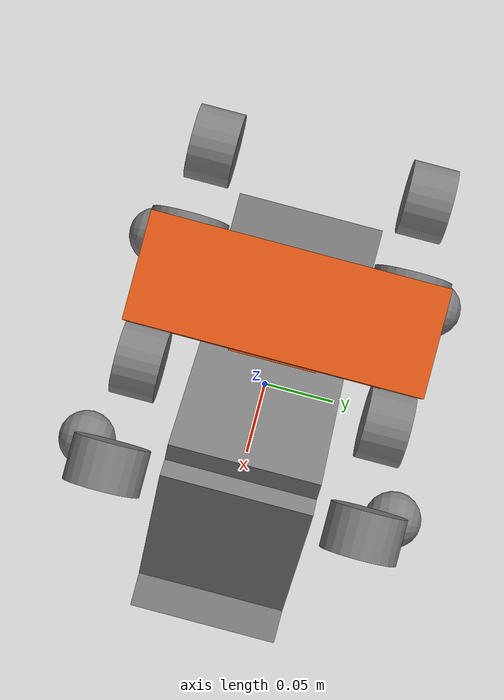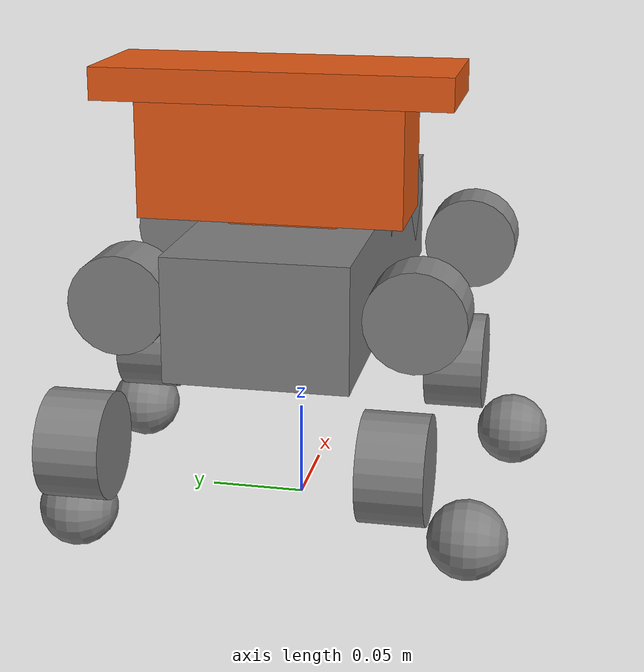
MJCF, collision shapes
<mujoco model="pupper_v3">
    <asset>
        <texture type="skybox" builtin="gradient" rgb1=".3 .5 .7" rgb2="0 0 0" width="512"
            height="512" />
        <texture name="grid" type="2d" builtin="checker" width="512" height="512" rgb1=".2 .4 .6"
            rgb2=".4 .6 .8" />
        <material name="grid" texture="grid" texrepeat="1 1" texuniform="true" reflectance="0" />

<!-- HEATING_MODULE_BEGIN -->
<mesh name="heating_module_mesh" file="Heating_module.stl" scale="0.001 0.001 0.001" />
<!-- HEATING_MODULE_END -->
    </asset>
    <sensor>
        <framequat name="body_quat" objtype="site" objname="body_imu_site" />
        <gyro name="body_gyro" site="body_imu_site" />
        <accelerometer name="body_acc" site="body_imu_site" />

        <framequat objtype="site" objname="body_imu_site" name="orientation" />
        <framepos objtype="site" objname="body_imu_site" name="global_position" />
        <framelinvel objtype="site" objname="body_imu_site" name="global_linvel" />
        <frameangvel objtype="site" objname="body_imu_site" name="global_angvel" />
    </sensor>
    <actuator>
        <general joint="leg_front_r_1" name="leg_front_r_1" />
        <general joint="leg_front_r_2" name="leg_front_r_2" />
        <general joint="leg_front_r_3" name="leg_front_r_3" />

        <general joint="leg_front_l_1" name="leg_front_l_1" />
        <general joint="leg_front_l_2" name="leg_front_l_2" />
        <general joint="leg_front_l_3" name="leg_front_l_3" />

        <general joint="leg_back_r_1" name="leg_back_r_1" />
        <general joint="leg_back_r_2" name="leg_back_r_2" />
        <general joint="leg_back_r_3" name="leg_back_r_3" />

        <general joint="leg_back_l_1" name="leg_back_l_1" />
        <general joint="leg_back_l_2" name="leg_back_l_2" />
        <general joint="leg_back_l_3" name="leg_back_l_3" />
    </actuator>
    <default>
        <!-- position control actuators -->
        <general forcerange="-3 3" forcelimited="true" biastype="affine" gainprm="5.0 0 0"
            biasprm="0 -5.0 -0.1" />

        <!-- visual geom will go to group 4 -->
        <geom condim="6" contype="0" conaffinity="0" group="4" />

        <!-- collision geom in group 3 -->

        <!-- removed solimp which caused nans on flat ground -->
        <default class="collision">
            <geom group="3" contype="1" conaffinity="1"
                friction="0.8 0.02 0.01" />
        </default>

        <default class="visual">
            <geom group="4" contype="0" conaffinity="0" />
        </default>

        <joint armature="0.0016" type="hinge" damping="0.01" frictionloss="0.125" limited="true" />
    </default>
    <option cone="elliptic" impratio="100" />
    <compiler angle="radian" meshdir="../meshes/stl/" autolimits="true" />
    <asset>
        <mesh name="BodyV4v70_001" file="BodyV4v70_001.stl" />
        <mesh name="LegAssemblyForFlangedv26_001" file="LegAssemblyForFlangedv26_001.stl" />
        <mesh name="LegAssemblyForFlangedv26_002" file="LegAssemblyForFlangedv26_002.stl" />
        <mesh name="LegAssemblyForFlangedv26_003" file="LegAssemblyForFlangedv26_003.stl" />
        <mesh name="LegAssemblyForFlangedv26_010" file="LegAssemblyForFlangedv26_010.stl"
            scale="1 -1 1" />
        <mesh name="LegAssemblyForFlangedv26_011" file="LegAssemblyForFlangedv26_011.stl"
            scale="1 1 -1" />
        <mesh name="LegAssemblyForFlangedv26_012" file="LegAssemblyForFlangedv26_012.stl"
            scale="1 1 -1" />
        <mesh name="LegAssemblyForFlangedv26_005" file="LegAssemblyForFlangedv26_005.stl" />
        <mesh name="LegAssemblyForFlangedv26_006" file="LegAssemblyForFlangedv26_006.stl" />
        <mesh name="LegAssemblyForFlangedv26_007" file="LegAssemblyForFlangedv26_007.stl" />
        <mesh name="LegAssemblyForFlangedv26_013" file="LegAssemblyForFlangedv26_013.stl"
            scale="1 -1 1" />
        <mesh name="LegAssemblyForFlangedv26_014" file="LegAssemblyForFlangedv26_014.stl"
            scale="1 1 -1" />
        <mesh name="LegAssemblyForFlangedv26_015" file="LegAssemblyForFlangedv26_015.stl"
            scale="1 1 -1" />
    </asset>
    <worldbody>
        <body name="base_link" pos="0 0 0.13" gravcomp="0">
<!-- HEATING_MODULE_BEGIN -->
<body name="heating_module" pos="-0.036349545 3.1565e-05 0.032506671263" quat="0.5 -0.5 -0.5 0.5">
  <inertial mass="0.60191707499" pos="0.003048 -0.043688 0.0062992" fullinertia="0.00042315693885862 0.0011088116468432 0.0012522050770235 4.6822344548672e-06 2.3411172274336e-06 2.8386046382632e-05" />
  <geom name="heating_module_visual" type="mesh" mesh="heating_module_mesh" group="1" density="0" contype="0" conaffinity="0" rgba="0.96 0.49 0.08 1" />
  <geom name="heating_module_mount_plate_collision" type="box" pos="-3.1566499999997e-05 -0.0729689255 0.009196205" size="0.0870712015 0.0079756015 0.03175" density="0" group="3" contype="1" conaffinity="1" rgba="0.9 0.35 0.08 0.25" friction="0.8 0.02 0.01" />
  <geom name="heating_module_electronics_collision" type="box" pos="0.0022393245 -0.035668326 0.0050547045" size="0.0655292535 0.029324998 0.0267500005" density="0" group="3" contype="1" conaffinity="1" rgba="0.9 0.35 0.08 0.25" friction="0.8 0.02 0.01" />
  <geom name="heating_module_end_bracket_collision" type="box" pos="-3.15645e-05 -0.0031683285 -0.006349545" size="0.0275000005 0.0031750005 0.01620425" density="0" group="3" contype="1" conaffinity="1" rgba="0.9 0.35 0.08 0.25" friction="0.8 0.02 0.01" />
</body>
<!-- HEATING_MODULE_END -->

            <inertial pos="0.025 0 0.015" quat="0 0.677807 0 0.73524" mass="1.506"
                diaginertia="0.00854071 0.0085 0.00235929" />
            <freejoint name="world_to_body" />

            <!-- simple box -->

            <!-- more accurate collision geometry -->
            <geom size="0.04507 0.031 0.129715" pos="0.02146 0 0"
                quat="0.499998 -0.5 -0.500002 0.5" type="box" class="collision" />
            <geom size="0.02 0.04507 0.06" pos="0.02 0 0.04"
                quat="0 0.38 0 0.924" type="box" class="collision" />
            <geom size="0.02 0.04507 0.06" pos="0.094 0 0.04"
                quat="0 -0.38 0 0.924" type="box" class="collision" />

            <geom quat="0.499998 -0.5 -0.500002 0.5" type="mesh" class="visual" density="0"
                mesh="BodyV4v70_001" />
            <body name="leg_front_r_1" pos="0.075 -0.0835 0" quat="0.707105 0.707108 0 0"
                gravcomp="0">
                <inertial pos="0 0 0" mass="0.18" diaginertia="7.4e-05 5.8e-05 4.8e-05" />
                <joint name="leg_front_r_1" pos="0 0 0" axis="0 0 1" range="-1.22 2.51" />
                <geom pos="0 0 0" quat="0 0.707 0 0.707" type="cylinder" size="0.025 0.015"
                    class="collision" />
                <geom pos="0 0 -0.028" quat="1.32679e-06 0 0 1" type="mesh" class="visual"
                    density="0" mesh="LegAssemblyForFlangedv26_001" />
                <body name="leg_front_r_2" pos="0 0 0"
                    quat="0.707107 2.24089e-06 -0.707107 4.83018e-06" gravcomp="0">
                    <inertial pos="0 -0.0334 0.05419" quat="0.903877 0.427791 0 0" mass="0.186"
                        diaginertia="0.000113 9.74951e-05 4.65049e-05" />
                    <joint name="leg_front_r_2" pos="0 0 0" axis="0 0 1" range="-0.42 3.14" />
                    <geom size="0.025 0.015" pos="0 -0.0494 0.0685" quat="0.707105 0 0.707108 0"
                        type="cylinder" class="collision" />
                    <geom pos="-0.028 0 0" quat="-2.93388e-06 0.707108 2.26082e-06 0.707106"
                        type="mesh" class="visual" density="0"
                        mesh="LegAssemblyForFlangedv26_002" />
                    <body name="leg_front_r_3" pos="0 -0.0494 0.0685" quat="0.707105 0 0.707108 0"
                        gravcomp="0">
                        <inertial pos="0.03866 -0.03585 0.02733"
                            quat="0.270598 0.653281 -0.270598 0.653281" mass="0.05"
                            diaginertia="7.7e-05 7.55e-05 5.5e-06" />
                        <joint name="leg_front_r_3" pos="0 0 0" axis="0 0 1" range="-2.79 0.71" />
                        <geom size="0.01995" pos="0.06231 -0.06216 0.027" quat="1.32679e-06 0 0 1"
                            type="sphere" class="collision" />
                        <geom pos="0.0685 0.0494 -0.019" quat="1.32679e-06 0 0 1" type="mesh"
                            class="visual" density="0"
                            mesh="LegAssemblyForFlangedv26_003" />
                        <site name="leg_front_r_3_foot_site" pos="0.06231 -0.06216 0.027" />
                    </body>
                </body>
            </body>
            <body name="leg_front_l_1" pos="0.075 0.0835 0" quat="0.707105 -0.707108 0 0"
                gravcomp="0">
                <inertial pos="0 0 0" mass="0.18" diaginertia="7.4e-05 5.8e-05 4.8e-05" />
                <joint name="leg_front_l_1" pos="0 0 0" axis="0 0 1" range="-2.51 1.22" />
                <geom pos="0 0 -0.028" quat="1.32679e-06 0 0 1" type="mesh" class="visual"
                    density="0" mesh="LegAssemblyForFlangedv26_010" />
                <geom pos="0 0 0" quat="0 0.707 0 0.707" type="cylinder" size="0.025 0.015"
                    class="collision" />
                <body name="leg_front_l_2" pos="0 0 0"
                    quat="-3.89602e-06 0.707107 -1.29867e-06 -0.707107" gravcomp="0">
                    <inertial pos="0 -0.0334 0.05419" quat="0.903877 0.427791 0 0" mass="0.186"
                        diaginertia="0.000113 9.74951e-05 4.65049e-05" />
                    <joint name="leg_front_l_2" pos="0 0 0" axis="0 0 1" range="-3.14 0.42" />
                    <geom size="0.025 0.015" pos="0 -0.0494 0.0685" quat="0.707105 0 0.707108 0"
                        type="cylinder" class="collision" />
                    <geom pos="0.028 0 0" quat="-2.93388e-06 0.707108 2.26082e-06 0.707106"
                        type="mesh" class="visual" density="0"
                        mesh="LegAssemblyForFlangedv26_011" />
                    <body name="leg_front_l_3" pos="0 -0.0494 0.0685"
                        quat="9.38184e-07 -0.707108 9.38187e-07 0.707105" gravcomp="0">
                        <inertial pos="0.03866 0.03585 0.02733"
                            quat="0.653281 0.270598 -0.653281 0.270598" mass="0.05"
                            diaginertia="7.7e-05 7.55e-05 5.5e-06" />
                        <joint name="leg_front_l_3" pos="0 0 0" axis="0 0 1" range="-0.71 2.79" />
                        <geom size="0.01995" pos="0.06231 0.06216 0.027" quat="1.32679e-06 0 0 1"
                            type="sphere" class="collision" />
                        <geom pos="0.0685 -0.0494 -0.019"
                            quat="1.76029e-12 1.32679e-06 1 1.32679e-06" type="mesh" class="visual"
                            density="0"
                            mesh="LegAssemblyForFlangedv26_012" />
                        <site name="leg_front_l_3_foot_site" pos="0.06231 0.06216 0.027" />
                    </body>
                </body>
            </body>
            <body name="leg_back_r_1" pos="-0.075 -0.0725 0" quat="0.707105 0.707108 0 0"
                gravcomp="0">
                <inertial pos="0 0 0" mass="0.18" diaginertia="7.4e-05 5.8e-05 4.8e-05" />
                <joint name="leg_back_r_1" pos="0 0 0" axis="0 0 1" range="-1.22 2.51" />
                <geom pos="0 0 0" quat="0 0.707 0 0.707" type="cylinder" size="0.025 0.015"
                    class="collision" />
                <geom pos="0 0 -0.028" quat="1.32679e-06 0 0 1" type="mesh" class="visual"
                    density="0" mesh="LegAssemblyForFlangedv26_005" />
                <body name="leg_back_r_2" pos="0 0 0"
                    quat="0.707107 2.24089e-06 -0.707107 4.83018e-06" gravcomp="0">
                    <inertial pos="0 -0.0334 0.05419" quat="0.903877 0.427791 0 0" mass="0.186"
                        diaginertia="0.000113 9.74951e-05 4.65049e-05" />
                    <joint name="leg_back_r_2" pos="0 0 0" axis="0 0 1" range="-0.42 3.14" />
                    <geom size="0.025 0.015" pos="0 -0.0494 0.0685" quat="0.707105 0 0.707108 0"
                        type="cylinder" class="collision" />
                    <geom pos="-0.028 0 0" quat="-2.93388e-06 0.707108 2.26082e-06 0.707106"
                        type="mesh" class="visual" density="0"
                        mesh="LegAssemblyForFlangedv26_006" />
                    <body name="leg_back_r_3" pos="0 -0.0494 0.0685" quat="0.707105 0 0.707108 0"
                        gravcomp="0">
                        <inertial pos="0.03866 -0.03585 0.02733"
                            quat="0.270598 0.653281 -0.270598 0.653281" mass="0.05"
                            diaginertia="7.7e-05 7.55e-05 5.5e-06" />
                        <joint name="leg_back_r_3" pos="0 0 0" axis="0 0 1" range="-2.79 0.71" />
                        <geom size="0.01995" pos="0.06231 -0.06216 0.027" quat="1.32679e-06 0 0 1"
                            type="sphere" class="collision" />
                        <geom pos="0.0685 0.0494 -0.019" quat="1.32679e-06 0 0 1" type="mesh"
                            class="visual" density="0"
                            mesh="LegAssemblyForFlangedv26_007" />
                        <site name="leg_back_r_3_foot_site" pos="0.06231 -0.06216 0.027" />
                    </body>
                </body>
            </body>
            <body name="leg_back_l_1" pos="-0.075 0.0725 0" quat="0.707105 -0.707108 0 0"
                gravcomp="0">
                <inertial pos="0 0 0" mass="0.18" diaginertia="7.4e-05 5.8e-05 4.8e-05" />
                <joint name="leg_back_l_1" pos="0 0 0" axis="0 0 1" range="-2.51 1.22" />
                <geom pos="0 0 0" quat="0 0.707 0 0.707" type="cylinder" size="0.025 0.015"
                    class="collision" />
                <geom pos="0 0 -0.028" quat="1.32679e-06 0 0 1" type="mesh" class="visual"
                    density="0" mesh="LegAssemblyForFlangedv26_013" />
                <body name="leg_back_l_2" pos="0 0 0"
                    quat="-3.89602e-06 0.707107 -1.29867e-06 -0.707107" gravcomp="0">
                    <inertial pos="0 -0.0334 0.05419" quat="0.903877 0.427791 0 0" mass="0.186"
                        diaginertia="0.000113 9.74951e-05 4.65049e-05" />
                    <joint name="leg_back_l_2" pos="0 0 0" axis="0 0 1" range="-3.14 0.42" />
                    <geom size="0.025 0.015" pos="0 -0.0494 0.0685" quat="0.707105 0 0.707108 0"
                        type="cylinder" class="collision" />
                    <geom pos="0.028 0 0" quat="-2.93388e-06 0.707108 2.26082e-06 0.707106"
                        type="mesh" class="visual" density="0"
                        mesh="LegAssemblyForFlangedv26_014" />
                    <body name="leg_back_l_3" pos="0 -0.0494 0.0685"
                        quat="9.38184e-07 -0.707108 9.38187e-07 0.707105" gravcomp="0">
                        <inertial pos="0.03866 0.03585 0.02733"
                            quat="0.653281 0.270598 -0.653281 0.270598" mass="0.05"
                            diaginertia="7.7e-05 7.55e-05 5.5e-06" />
                        <joint name="leg_back_l_3" pos="0 0 0" axis="0 0 1" range="-0.71 2.79" />
                        <geom size="0.01995" pos="0.06231 0.06216 0.027" quat="1.32679e-06 0 0 1"
                            type="sphere" class="collision" />
                        <geom pos="0.0685 -0.0494 -0.019"
                            quat="1.76029e-12 1.32679e-06 1 1.32679e-06" type="mesh" class="visual"
                            density="0"
                            mesh="LegAssemblyForFlangedv26_015" />
                        <site name="leg_back_l_3_foot_site" pos="0.06231 0.06216 0.027" />
                    </body>
                </body>
            </body>
            <site name="body_imu_site" pos="0.09 0 0.032" />
        </body>
        <light name="spotlight" mode="targetbodycom" target="base_link" diffuse="0.9 0.9 0.9"
            specular="0.3 0.3 0.3" pos="0 -4 4" cutoff="100" />
        <camera name="tracking_cam" mode="targetbody" target="base_link" pos="0.5 -0.5 0.5" />
    </worldbody>
    <custom>
        <numeric name="quadmorph_additional_hub_gap_m" data="0.009" />
    </custom>
</mujoco>
